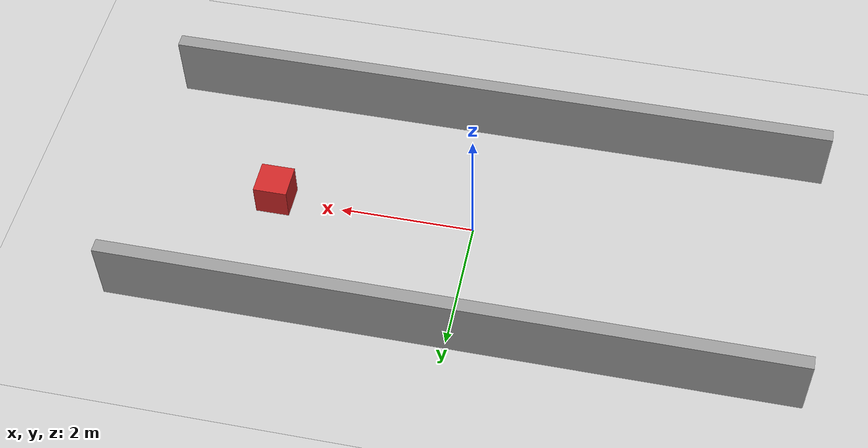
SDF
<?xml version="1.0" ?>
<sdf version="1.6">
  <world name="corridor_world">
    <include>
      <uri>model://sun</uri>
    </include>
    <include>
      <uri>model://ground_plane</uri>
    </include>

    <physics type="ode">
      <real_time_update_rate>1000.0</real_time_update_rate>
      <max_step_size>0.001</max_step_size>
      <real_time_factor>1</real_time_factor>
      <ode>
        <solver>
          <type>quick</type>
          <iters>150</iters>
          <precon_iters>0</precon_iters>
          <sor>1.400000</sor>
          <use_dynamic_moi_rescaling>1</use_dynamic_moi_rescaling>
        </solver>
        <constraints>
          <cfm>0.00001</cfm>
          <erp>0.2</erp>
          <contact_max_correcting_vel>2000.000000</contact_max_correcting_vel>
          <contact_surface_layer>0.01000</contact_surface_layer>
        </constraints>
      </ode>
    </physics>

    <!-- Wall 1 -->
    <model name='wall_1'>
      <pose frame=''>0 2 0.5 0 -0 0</pose>
      <link name='link'>
        <collision name='collision'>
          <geometry>
            <box>
              <size>10 0.2 1</size>
            </box>
          </geometry>
        </collision>
        <visual name='visual'>
          <geometry>
            <box>
              <size>10 0.2 1</size>
            </box>
          </geometry>
          <material>
            <script>
              <uri>file://media/materials/scripts/gazebo.material</uri>
              <name>Gazebo/Grey</name>
            </script>
          </material>
        </visual>
      </link>
    </model>

    <!-- Wall 2 -->
    <model name='wall_2'>
      <pose frame=''>0 -2 0.5 0 -0 0</pose>
      <link name='link'>
        <collision name='collision'>
          <geometry>
            <box>
              <size>10 0.2 1</size>
            </box>
          </geometry>
        </collision>
        <visual name='visual'>
          <geometry>
            <box>
              <size>10 0.2 1</size>
            </box>
          </geometry>
          <material>
            <script>
              <uri>file://media/materials/scripts/gazebo.material</uri>
              <name>Gazebo/Grey</name>
            </script>
          </material>
        </visual>
      </link>
    </model>

    <!-- Obstacle -->
    <model name='obstacle_1'>
      <pose frame=''>3 0 0.25 0 -0 0</pose>
      <link name='link'>
        <collision name='collision'>
          <geometry>
            <box>
              <size>0.5 0.5 0.5</size>
            </box>
          </geometry>
        </collision>
        <visual name='visual'>
          <geometry>
            <box>
              <size>0.5 0.5 0.5</size>
            </box>
          </geometry>
          <material>
            <script>
              <uri>file://media/materials/scripts/gazebo.material</uri>
              <name>Gazebo/Red</name>
            </script>
          </material>
        </visual>
      </link>
    </model>

  </world>
</sdf>
